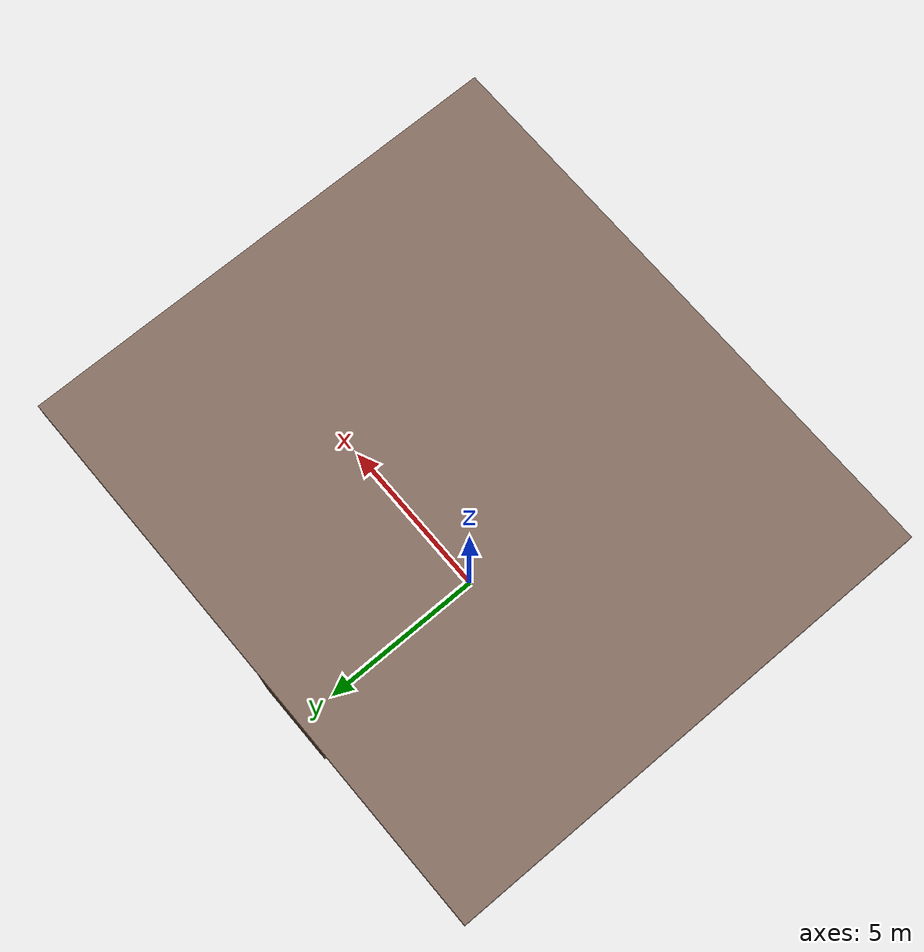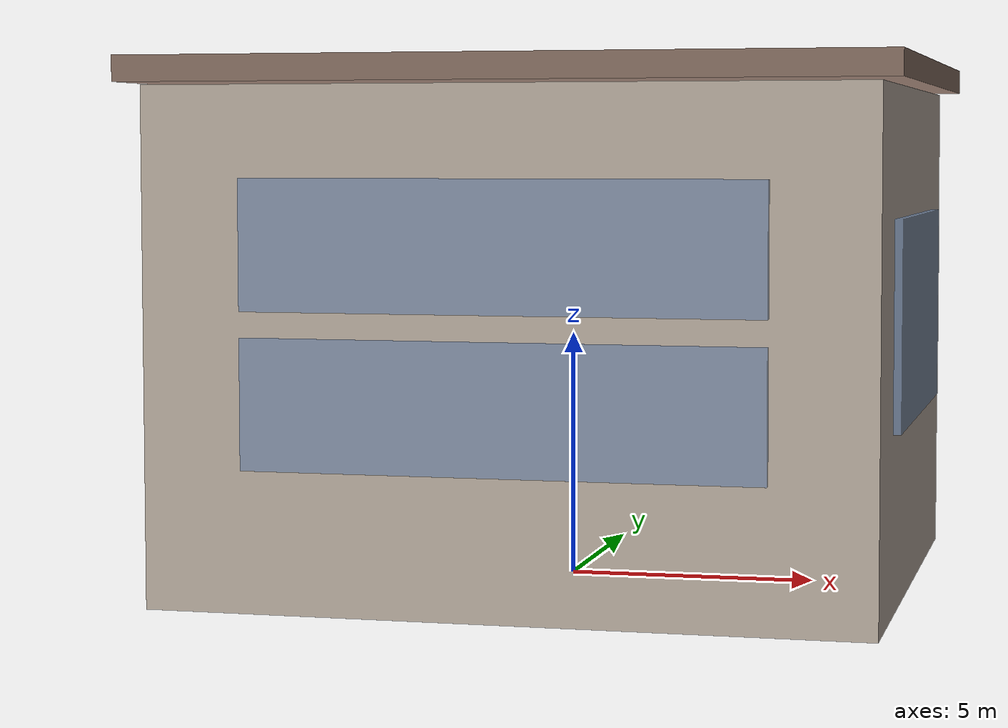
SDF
<?xml version="1.0"?>
<sdf version="1.9">
  <model name="dodoma_building">
    <static>true</static>
    <link name="main">
      <collision name="col">
        <geometry><box><size>14 12 10</size></box></geometry>
      </collision>
      <!-- Main walls -->
      <visual name="walls">
        <pose>0 0 5 0 0 0</pose>
        <geometry><box><size>14 12 10</size></box></geometry>
        <material>
          <ambient>0.7 0.65 0.6 1</ambient>
          <diffuse>0.75 0.7 0.65 1</diffuse>
          <specular>0.15 0.12 0.1 1</specular>
        </material>
      </visual>
      <!-- Front windows row 1 -->
      <visual name="front_w1">
        <pose>0 6.1 7 0 0 0</pose>
        <geometry><box><size>10 0.15 2.5</size></box></geometry>
        <material>
          <ambient>0.45 0.55 0.7 0.7</ambient>
          <diffuse>0.5 0.6 0.75 0.7</diffuse>
          <specular>0.4 0.4 0.4 1</specular>
        </material>
      </visual>
      <!-- Front windows row 2 -->
      <visual name="front_w2">
        <pose>0 6.1 4 0 0 0</pose>
        <geometry><box><size>10 0.15 2.5</size></box></geometry>
        <material>
          <ambient>0.45 0.55 0.7 0.7</ambient>
          <diffuse>0.5 0.6 0.75 0.7</diffuse>
          <specular>0.4 0.4 0.4 1</specular>
        </material>
      </visual>
      <!-- Back windows row 1 -->
      <visual name="back_w1">
        <pose>0 -6.1 7 0 0 0</pose>
        <geometry><box><size>10 0.15 2.5</size></box></geometry>
        <material>
          <ambient>0.45 0.55 0.7 0.7</ambient>
          <diffuse>0.5 0.6 0.75 0.7</diffuse>
          <specular>0.4 0.4 0.4 1</specular>
        </material>
      </visual>
      <!-- Back windows row 2 -->
      <visual name="back_w2">
        <pose>0 -6.1 4 0 0 0</pose>
        <geometry><box><size>10 0.15 2.5</size></box></geometry>
        <material>
          <ambient>0.45 0.55 0.7 0.7</ambient>
          <diffuse>0.5 0.6 0.75 0.7</diffuse>
          <specular>0.4 0.4 0.4 1</specular>
        </material>
      </visual>
      <!-- Side windows left -->
      <visual name="left_w1">
        <pose>-7.1 0 5.5 0 0 0</pose>
        <geometry><box><size>0.15 8 4</size></box></geometry>
        <material>
          <ambient>0.45 0.55 0.7 0.7</ambient>
          <diffuse>0.5 0.6 0.75 0.7</diffuse>
          <specular>0.4 0.4 0.4 1</specular>
        </material>
      </visual>
      <!-- Side windows right -->
      <visual name="right_w1">
        <pose>7.1 0 5.5 0 0 0</pose>
        <geometry><box><size>0.15 8 4</size></box></geometry>
        <material>
          <ambient>0.45 0.55 0.7 0.7</ambient>
          <diffuse>0.5 0.6 0.75 0.7</diffuse>
          <specular>0.4 0.4 0.4 1</specular>
        </material>
      </visual>
      <!-- Roof -->
      <visual name="roof">
        <pose>0 0 10.3 0 0 0</pose>
        <geometry><box><size>14.8 12.8 0.5</size></box></geometry>
        <material>
          <ambient>0.5 0.4 0.35 1</ambient>
          <diffuse>0.55 0.45 0.4 1</diffuse>
          <specular>0.1 0.08 0.05 1</specular>
        </material>
      </visual>
      <!-- Entrance -->
      <visual name="entrance">
        <pose>0 6.1 1.2 0 0 0</pose>
        <geometry><box><size>2.5 0.3 2</size></box></geometry>
        <material>
          <ambient>0.35 0.25 0.15 1</ambient>
          <diffuse>0.4 0.3 0.2 1</diffuse>
          <specular>0.1 0.08 0.05 1</specular>
        </material>
      </visual>
    </link>
  </model>
</sdf>
